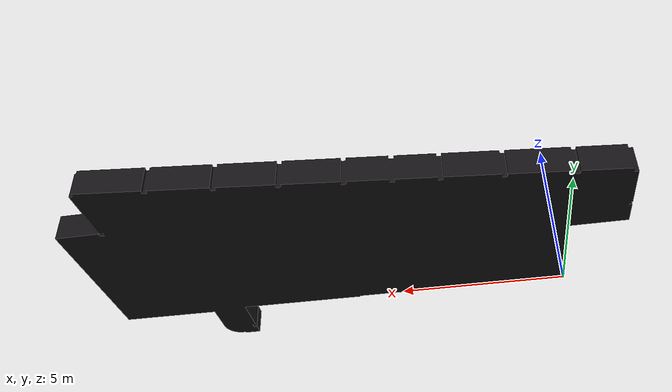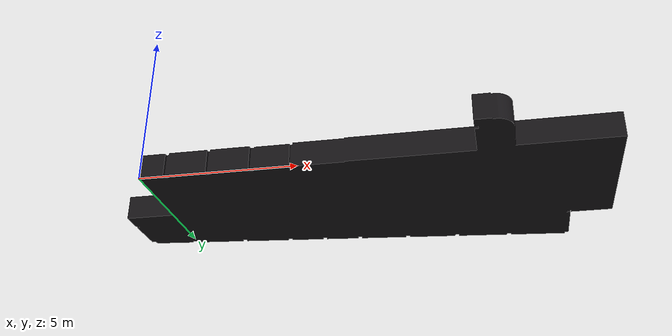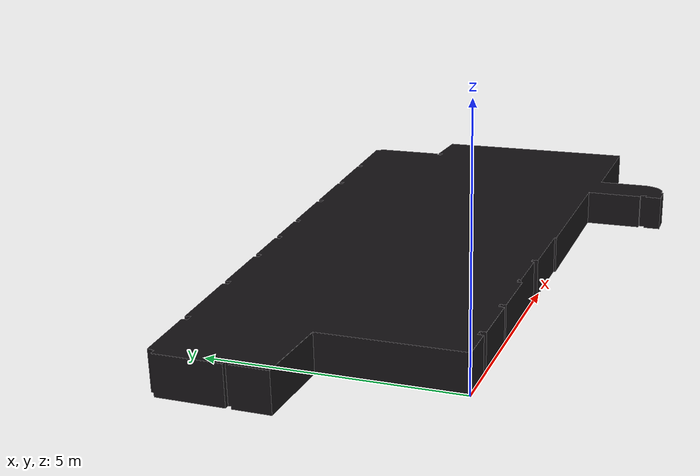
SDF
<?xml version='1.0'?>
<sdf version="1.6">
  <model name="noncrack_4">
    <static>true</static>
    <link name="link">
      <collision name="collision">
        <geometry>
          <box>
            <size>1 1 1</size>
          </box>
        </geometry>
      </collision>
      <visual name="visual">
        <geometry>
          <mesh>
            <scale>0.3 0.3 0.3</scale>
            <uri>model://parking/parking_with_target.dae</uri>
          </mesh>
        </geometry>
      </visual>
    </link>
  </model>
</sdf>
